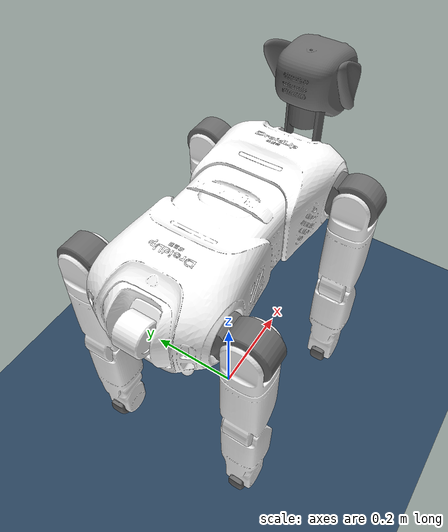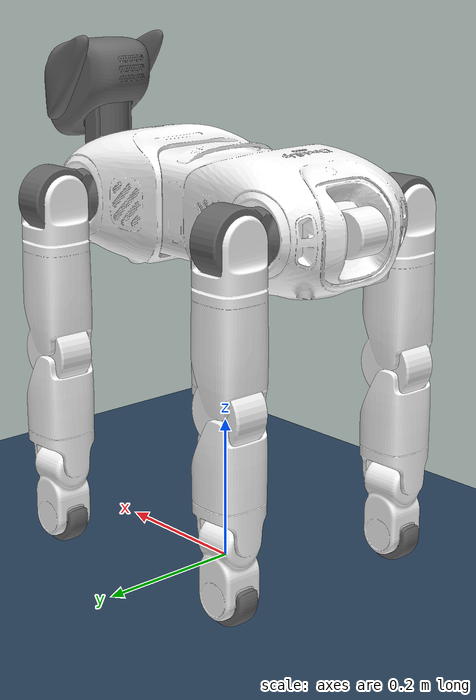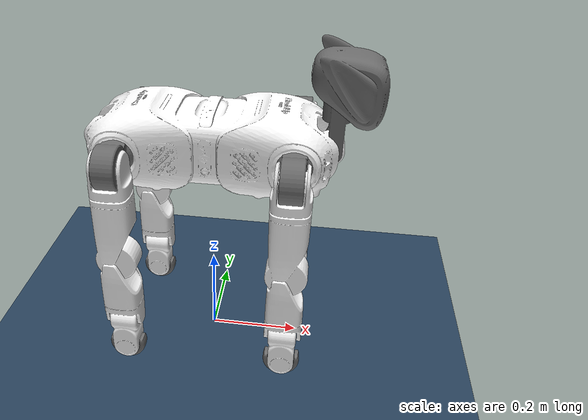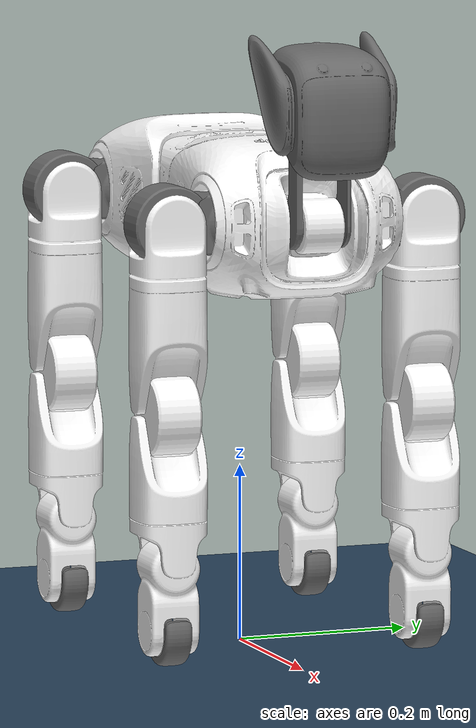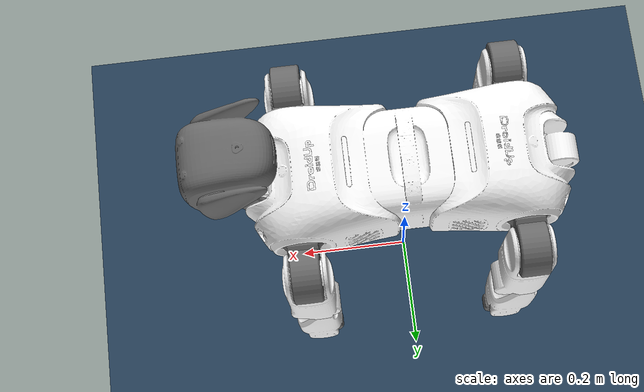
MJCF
<mujoco model="E1 scene">
  <include file="E1_DOG.xml"/>

  <statistic center="1.0 0.7 1.0" extent="0.8"/>

  <visual>
    <headlight diffuse="0.6 0.6 0.6" ambient="0.1 0.1 0.1" specular="0.9 0.9 0.9"/>
    <rgba haze="0.15 0.25 0.35 1"/>
    <global azimuth="-140" elevation="-20"/>
  </visual>

  <asset>
    <texture type="skybox" builtin="flat" rgb1="0 0 0" rgb2="0 0 0" width="512" height="3072"/>
    <texture type="2d" name="groundplane" builtin="checker" mark="edge" rgb1="0.2 0.3 0.4" rgb2="0.1 0.2 0.3" markrgb="0.8 0.8 0.8" width="300" height="300"/>
    <material name="groundplane" texture="groundplane" texuniform="true" texrepeat="5 5" reflectance="0.2"/>
  </asset>

  <worldbody>
    <light pos="1 0 3.5" dir="0 0 -1" directional="true"/>
    <geom name="floor" size="0 0 0.05" type="plane" material="groundplane"/>
  </worldbody>
</mujoco>

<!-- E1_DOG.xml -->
<mujoco model="E1dog">
  <compiler angle="radian" meshdir="./meshes/"/>

  <asset>
    <mesh name="base" file="base.STL"/>
    <mesh name="head_pitch_link" file="head_pitch_link.STL"/>
    <mesh name="head_yaw_link" file="head_yaw_link.STL"/>
    <mesh name="FL_thigh_link" file="FL_thigh_link.STL"/>
    <mesh name="FL_hip_link" file="FL_hip_link.STL"/>
    <mesh name="FL_calf_link" file="FL_calf_link.STL"/>
    <mesh name="FL_foot_link" file="FL_foot_link.STL"/>
    <mesh name="FR_thigh_link" file="FR_thigh_link.STL"/>
    <mesh name="FR_hip_link" file="FR_hip_link.STL"/>
    <mesh name="FR_calf_link" file="FR_calf_link.STL"/>
    <mesh name="FR_foot_link" file="FR_foot_link.STL"/>
    <mesh name="RL_thigh_link" file="RL_thigh_link.STL"/>
    <mesh name="RL_hip_link" file="RL_hip_link.STL"/>
    <mesh name="RL_calf_link" file="RL_calf_link.STL"/>
    <mesh name="RL_foot_link" file="RL_foot_link.STL"/>
    <mesh name="RR_thigh_link" file="RR_thigh_link.STL"/>
    <mesh name="RR_hip_link" file="RR_hip_link.STL"/>
    <mesh name="RR_calf_link" file="RR_calf_link.STL"/>
    <mesh name="RR_foot_link" file="RR_foot_link.STL"/>
    <mesh name="logo" file="logo.STL"/>
  </asset>

  <worldbody>
    <body name="base" pos="0 0 0.50">
      <inertial pos="0.0744596 -0.000154848 0.0181699" quat="0.00634995 0.579825 0.00378063 0.814707" mass="7.201" diaginertia="0.16218 0.140678 0.0748823"/>
      <joint name="floating_base_joint" type="free" limited="false" actuatorfrclimited="false"/>
      <geom type="mesh" contype="0" conaffinity="0" group="1" density="0" rgba="1 1 1 1" mesh="base"/>
      <geom type="mesh" rgba="1 1 1 1" mesh="base"/>
      <geom pos="0.24 0 0" type="mesh" contype="0" conaffinity="0" group="1" density="0" rgba="0.41961 0.41961 0.41961 1" mesh="head_pitch_link"/>
      <geom pos="0.25 0 0.12" quat="1 0 0 0" type="mesh" contype="0" conaffinity="0" group="1" density="0" rgba="0.41961 0.41961 0.41961 1" mesh="head_yaw_link"/>
      <geom type="mesh" contype="0" conaffinity="0" group="1" density="0" rgba="1 1 1 1" mesh="logo"/>
      <site name="imu" pos="0 0  0.03"/>
      <body name="FL_thigh_link" pos="0.1755 0.094 0">
        <inertial pos="0 0.0468537 0" quat="0.707107 0.707107 0 0" mass="0.8" diaginertia="0.0009615 0.00072642 0.00052077"/>
        <joint name="FL_thigh_joint" pos="0 0 0" axis="0 1 0" range="-1.5708 3.4907" actuatorfrcrange="-23.7 23.7"/>
        <geom type="mesh" contype="0" conaffinity="0" group="1" density="0" rgba="0.41961 0.41961 0.41961 1" mesh="FL_thigh_link"/>
        <body name="FL_hip_link" pos="0 0.055 0">
          <inertial pos="-0.00166297 0 -0.0878622" quat="0.706782 -0.0214321 -0.0214321 0.706782" mass="1.5" diaginertia="0.00451595 0.00447737 0.00140494"/>
          <joint name="FL_hip_joint" pos="0 0 0" axis="1 0 0" range="-1.0472 1.0472" actuatorfrcrange="-23.7 23.7"/>
          <geom type="mesh" contype="0" conaffinity="0" group="1" density="0" rgba="1 1 1 1" mesh="FL_hip_link"/>
          <body name="FL_calf_link" pos="0 0 -0.21">
            <inertial pos="-0.00153638 0 -0.143292" quat="0.707072 0.00701037 0.00701037 0.707072" mass="1.4" diaginertia="0.00758791 0.0074624 0.00112784"/>
            <joint name="FL_calf_joint" pos="0 0 0" axis="0 1 0" range="-2.7227 -0.83776" actuatorfrcrange="-45.43 45.43"/>
            <geom type="mesh" contype="0" conaffinity="0" group="1" density="0" rgba="1 1 1 1" mesh="FL_calf_link"/>
            <geom pos="0 0 -0.23844" quat="1 0 0 0" type="mesh" contype="0" conaffinity="0" group="1" density="0" rgba="0.41961 0.41961 0.41961 1" mesh="FL_foot_link"/>
            <geom pos="0 0 -0.23844" quat="1 0 0 0" type="mesh" rgba="0.41961 0.41961 0.41961 1" mesh="FL_foot_link"/>
          </body>
        </body>
      </body>
      <body name="FR_thigh_link" pos="0.1755 -0.094 0">
        <inertial pos="0 -0.0468537 0" quat="0.707107 0.707107 0 0" mass="0.8" diaginertia="0.0009615 0.00072642 0.00052077"/>
        <joint name="FR_thigh_joint" pos="0 0 0" axis="0 1 0" range="-1.5708 3.4907" actuatorfrcrange="-23.7 23.7"/>
        <geom type="mesh" contype="0" conaffinity="0" group="1" density="0" rgba="0.41961 0.41961 0.41961 1" mesh="FR_thigh_link"/>
        <body name="FR_hip_link" pos="0 -0.055 0">
          <inertial pos="-0.00166297 0 -0.0878622" quat="0.706782 -0.0214321 -0.0214321 0.706782" mass="1.5" diaginertia="0.00451595 0.00447737 0.00140494"/>
          <joint name="FR_hip_joint" pos="0 0 0" axis="1 0 0" range="-1.0472 1.0472" actuatorfrcrange="-23.7 23.7"/>
          <geom type="mesh" contype="0" conaffinity="0" group="1" density="0" rgba="1 1 1 1" mesh="FR_hip_link"/>
          <body name="FR_calf_link" pos="0 0 -0.21">
            <inertial pos="-0.00153638 0 -0.143292" quat="0.707072 0.00701037 0.00701037 0.707072" mass="1.4" diaginertia="0.00758791 0.0074624 0.00112784"/>
            <joint name="FR_calf_joint" pos="0 0 0" axis="0 1 0" range="-2.7227 -0.83776" actuatorfrcrange="-45.43 45.43"/>
            <geom type="mesh" contype="0" conaffinity="0" group="1" density="0" rgba="1 1 1 1" mesh="FR_calf_link"/>
            <geom pos="0 0 -0.23844" quat="1 0 0 0" type="mesh" contype="0" conaffinity="0" group="1" density="0" rgba="0.41961 0.41961 0.41961 1" mesh="FR_foot_link"/>
            <geom pos="0 0 -0.23844" quat="1 0 0 0" type="mesh" rgba="0.41961 0.41961 0.41961 1" mesh="FR_foot_link"/>
          </body>
        </body>
      </body>
      <body name="RL_thigh_link" pos="-0.175 0.095 0">
        <inertial pos="0.00049999 0.0458537 0" quat="0.707107 0.707107 0 0" mass="0.8" diaginertia="0.0009615 0.00072642 0.00052077"/>
        <joint name="RL_thigh_joint" pos="0 0 0" axis="0 1 0" range="-1.5708 3.4907" actuatorfrcrange="-23.7 23.7"/>
        <geom type="mesh" contype="0" conaffinity="0" group="1" density="0" rgba="0.41961 0.41961 0.41961 1" mesh="RL_thigh_link"/>
        <body name="RL_hip_link" pos="0 0.054 0">
          <inertial pos="-0.00116297 0 -0.0878622" quat="0.706782 -0.0214321 -0.0214321 0.706782" mass="1.5" diaginertia="0.00451595 0.00447737 0.00140494"/>
          <joint name="RL_hip_joint" pos="0 0 0" axis="1 0 0" range="-1.0472 1.0472" actuatorfrcrange="-23.7 23.7"/>
          <geom type="mesh" contype="0" conaffinity="0" group="1" density="0" rgba="1 1 1 1" mesh="RL_hip_link"/>
          <body name="RL_calf_link" pos="0.0005 0 -0.21">
            <inertial pos="-0.00153638 0 -0.143292" quat="0.707072 0.00701034 0.00701034 0.707072" mass="1.4" diaginertia="0.00758793 0.00746242 0.00112784"/>
            <joint name="RL_calf_joint" pos="0 0 0" axis="0 1 0" range="-2.7227 -0.83776" actuatorfrcrange="-45.43 45.43"/>
            <geom type="mesh" contype="0" conaffinity="0" group="1" density="0" rgba="1 1 1 1" mesh="RL_calf_link"/>
            <geom pos="0 0 -0.23844" quat="1 0 0 0" type="mesh" contype="0" conaffinity="0" group="1" density="0" rgba="0.41961 0.41961 0.41961 1" mesh="RL_foot_link"/>
            <geom pos="0 0 -0.23844" quat="1 0 0 0" type="mesh" rgba="0.41961 0.41961 0.41961 1" mesh="RL_foot_link"/>
          </body>
        </body>
      </body>
      <body name="RR_thigh_link" pos="-0.1745 -0.094 0">
        <inertial pos="0 -0.0468537 0" quat="0.707107 0.707107 0 0" mass="0.8" diaginertia="0.0009615 0.00072642 0.00052077"/>
        <joint name="RR_thigh_joint" pos="0 0 0" axis="0 1 0" range="-1.5708 3.4907" actuatorfrcrange="-23.7 23.7"/>
        <geom type="mesh" contype="0" conaffinity="0" group="1" density="0" rgba="0.41961 0.41961 0.41961 1" mesh="RR_thigh_link"/>
        <body name="RR_hip_link" pos="0 -0.055 0">
          <inertial pos="-0.00166297 0 -0.0878622" quat="0.706782 -0.0214321 -0.0214321 0.706782" mass="1.5" diaginertia="0.00451595 0.00447737 0.00140494"/>
          <joint name="RR_hip_joint" pos="0 0 0" axis="1 0 0" range="-1.0472 1.0472" actuatorfrcrange="-23.7 23.7"/>
          <geom type="mesh" contype="0" conaffinity="0" group="1" density="0" rgba="1 1 1 1" mesh="RR_hip_link"/>
          <body name="RR_calf_link" pos="0 0 -0.21">
            <inertial pos="-0.00153638 0 -0.143292" quat="0.707072 0.00701037 0.00701037 0.707072" mass="1.4" diaginertia="0.00758791 0.0074624 0.00112784"/>
            <joint name="RR_calf_joint" pos="0 0 0" axis="0 1 0" range="-2.7227 -0.83776" actuatorfrcrange="-45.43 45.43"/>
            <geom type="mesh" contype="0" conaffinity="0" group="1" density="0" rgba="1 1 1 1" mesh="RR_calf_link"/>
            <geom pos="0 0 -0.23844" quat="1 0 0 0" type="mesh" contype="0" conaffinity="0" group="1" density="0" rgba="0.41961 0.41961 0.41961 1" mesh="RR_foot_link"/>
            <geom pos="0 0 -0.23844" quat="1 0 0 0" type="mesh" rgba="0.41961 0.41961 0.41961 1" mesh="RR_foot_link"/>
          </body>
        </body>
      </body>
    </body>
  </worldbody>
  <actuator>
    <motor name="FL_thigh_joint"   joint="FL_thigh_joint"   /> <!-- Leg Left -->
    <motor name="FL_hip_joint"     joint="FL_hip_joint"    />
    <motor name="FL_calf_joint"    joint="FL_calf_joint"     />
    <motor name="FR_thigh_joint"   joint="FR_thigh_joint"  />
    <motor name="FR_hip_joint"     joint="FR_hip_joint" />
    <motor name="FR_calf_joint"    joint="FR_calf_joint"  />

    <motor name="RL_thigh_joint"   joint="RL_thigh_joint"   /> <!-- Right Left -->
    <motor name="RL_hip_joint"     joint="RL_hip_joint"    />
    <motor name="RL_calf_joint"    joint="RL_calf_joint"     />
    <motor name="RR_thigh_joint"   joint="RR_thigh_joint"  />
    <motor name="RR_hip_joint"     joint="RR_hip_joint" />
    <motor name="RR_calf_joint"    joint="RR_calf_joint"  />
  </actuator>
  <sensor>
    <!-- 身体的的姿态 -->
    <gyro          name="gyro"    site='imu' noise='0.005' cutoff='34.9'/>
    <accelerometer name="acc"     site='imu' noise='0.005' cutoff='157'/>
    <framequat     name='bq'      objtype='site' noise='0.001' objname='imu'/>
    <framelinvel   name="blv"  objtype='site' objname='imu'/>
  </sensor>
</mujoco>
